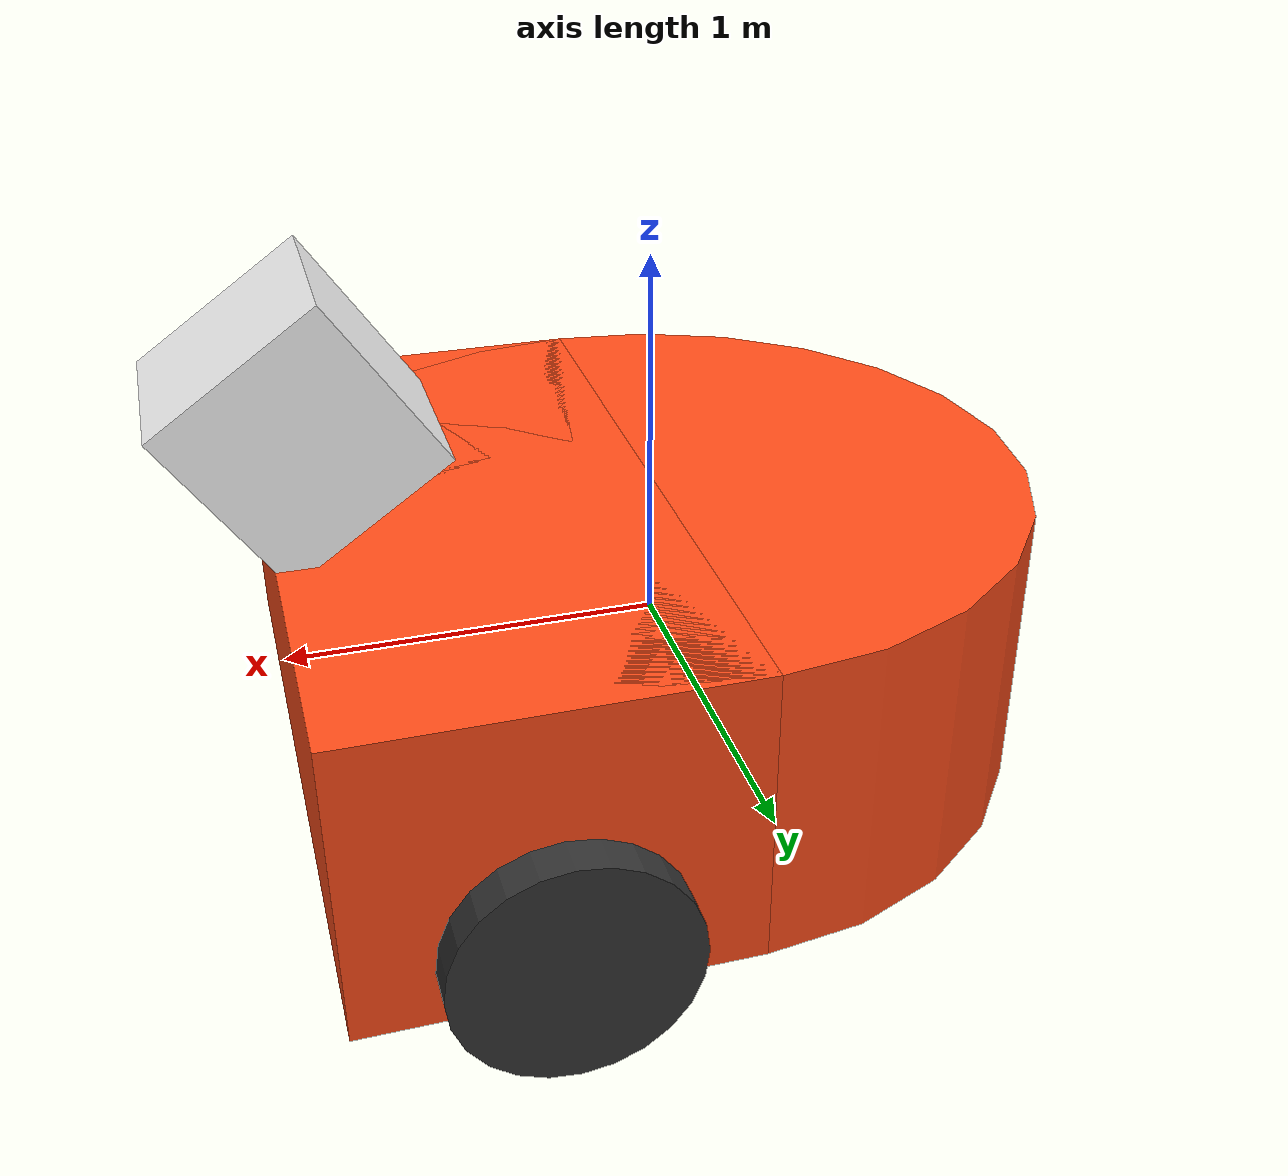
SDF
<?xml version="1.0" ?>
<!-- |    This document was autogenerated by xacro from nemo/models/robot/model.xacro  | -->
<!-- |    EDITING THIS FILE BY HAND IS NOT RECOMMENDED                                 | -->
<sdf version="1.7">
  <model name="robot">
    <static>false</static>
    <!-- Differential Drive Plugin -->
    <plugin filename="libignition-gazebo-diff-drive-system.so" name="ignition::gazebo::systems::DiffDrive">
      <!-- Wheels -->
      <left_joint>left_wheel_joint</left_joint>
      <right_joint>right_wheel_joint</right_joint>
      <!-- Kinematics -->
      <wheel_separation>2.0</wheel_separation>
      <wheel_radius>0.3</wheel_radius>
      <!-- Output -->
      <odom_publish_frequency>2</odom_publish_frequency>
      <tf_topic>tf</tf_topic>
      <frame_id>odom</frame_id>
      <child_frame_id>base_link</child_frame_id>
    </plugin>
    <!--Joint state publisher plugin -->
    <plugin filename="libignition-gazebo-joint-state-publisher-system.so" name="ignition::gazebo::systems::JointStatePublisher"/>
    <!-- IMU Plugin -->
    <plugin filename="libignition-gazebo-imu-system.so" name="ignition::gazebo::systems::Imu"/>
    <!-- Sensors Plugin -->
    <plugin filename="libignition-gazebo-sensors-system.so" name="ignition::gazebo::systems::Sensors">
      <render_engine>ogre2</render_engine>
    </plugin>
    <!-- Chassis -->
    <link name="base_link">
      <inertial>
        <mass>1.14395</mass>
        <inertia>
          <ixx>0.126164</ixx>
          <ixy>0</ixy>
          <ixz>0</ixz>
          <iyy>0.416519</iyy>
          <iyz>0</iyz>
          <izz>0.481014</izz>
        </inertia>
      </inertial>
      <visual name="front">
        <pose>0.5 0 0 0 0 0</pose>
        <geometry>
          <box>
            <size>1.0 2.0 0.8</size>
          </box>
        </geometry>
        <!-- Orange -->
        <material>
          <ambient>1 0.3 0.1 1</ambient>
          <diffuse>1 0.3 0.1 1</diffuse>
          <specular>1.0 1.0 1.0 1</specular>
        </material>
      </visual>
      <visual name="back">
        <geometry>
          <cylinder>
            <radius>1.0</radius>
            <length>0.8</length>
          </cylinder>
        </geometry>
        <!-- Orange -->
        <material>
          <ambient>1 0.3 0.1 1</ambient>
          <diffuse>1 0.3 0.1 1</diffuse>
          <specular>1.0 1.0 1.0 1</specular>
        </material>
      </visual>
      <collision name="collision">
        <geometry>
          <box>
            <size>0.8 2.0 0.8</size>
          </box>
        </geometry>
      </collision>
    </link>
    <!-- Footprint -->
    <link name="base_footprint"/>
    <joint name="base_joint" type="fixed">
      <parent>base_link</parent>
      <child>base_footprint</child>
    </joint>
    <link name="left_wheel">
      <pose>0.5 1.1 -0.2 1.5707963267948966 0 0</pose>
      <inertial>
        <mass>2</mass>
        <inertia>
          <ixx>0.145833</ixx>
          <ixy>0</ixy>
          <ixz>0</ixz>
          <iyy>0.145833</iyy>
          <iyz>0</iyz>
          <izz>0.125</izz>
        </inertia>
      </inertial>
      <visual name="visual">
        <geometry>
          <cylinder>
            <radius>0.3</radius>
            <length>0.1</length>
          </cylinder>
        </geometry>
        <material>
          <ambient>0.2 0.2 0.2 1</ambient>
          <diffuse>0.2 0.2 0.2 1</diffuse>
          <specular>0.2 0.2 0.2 1</specular>
        </material>
      </visual>
      <collision name="collision">
        <geometry>
          <cylinder>
            <radius>0.3</radius>
            <length>0.1</length>
          </cylinder>
        </geometry>
      </collision>
    </link>
    <joint name="left_wheel_joint" type="revolute">
      <pose relative_to="left_wheel"/>
      <parent>base_link</parent>
      <child>left_wheel</child>
      <axis>
        <xyz expressed_in="__model__">0 1 0</xyz>
        <limit>
          <lower>-1.79769e+308</lower>
          <upper>1.79769e+308</upper>
        </limit>
      </axis>
    </joint>
    <link name="right_wheel">
      <pose>0.5 -1.1 -0.2 1.5707963267948966 0 0</pose>
      <inertial>
        <mass>2</mass>
        <inertia>
          <ixx>0.145833</ixx>
          <ixy>0</ixy>
          <ixz>0</ixz>
          <iyy>0.145833</iyy>
          <iyz>0</iyz>
          <izz>0.125</izz>
        </inertia>
      </inertial>
      <visual name="visual">
        <geometry>
          <cylinder>
            <radius>0.3</radius>
            <length>0.1</length>
          </cylinder>
        </geometry>
        <material>
          <ambient>0.2 0.2 0.2 1</ambient>
          <diffuse>0.2 0.2 0.2 1</diffuse>
          <specular>0.2 0.2 0.2 1</specular>
        </material>
      </visual>
      <collision name="collision">
        <geometry>
          <cylinder>
            <radius>0.3</radius>
            <length>0.1</length>
          </cylinder>
        </geometry>
      </collision>
    </link>
    <joint name="right_wheel_joint" type="revolute">
      <pose relative_to="right_wheel"/>
      <parent>base_link</parent>
      <child>right_wheel</child>
      <axis>
        <xyz expressed_in="__model__">0 1 0</xyz>
        <limit>
          <lower>-1.79769e+308</lower>
          <upper>1.79769e+308</upper>
        </limit>
      </axis>
    </joint>
    <!-- Caster wheel -->
    <link name="caster_wheel">
      <pose>-0.8 0 -0.4 0 0 0</pose>
      <inertial>
        <mass>2</mass>
        <inertia>
          <ixx>0.145833</ixx>
          <ixy>0</ixy>
          <ixz>0</ixz>
          <iyy>0.145833</iyy>
          <iyz>0</iyz>
          <izz>0.125</izz>
        </inertia>
      </inertial>
      <visual name="visual">
        <geometry>
          <sphere>
            <radius>0.1</radius>
          </sphere>
        </geometry>
        <material>
          <ambient>0.2 0.2 0.2 1</ambient>
          <diffuse>0.2 0.2 0.2 1</diffuse>
          <specular>0.2 0.2 0.2 1</specular>
        </material>
      </visual>
      <collision name="collision">
        <geometry>
          <sphere>
            <radius>0.1</radius>
          </sphere>
        </geometry>
      </collision>
    </link>
    <joint name="caster_wheel_joint" type="fixed">
      <parent>base_link</parent>
      <child>caster_wheel</child>
      <axis>
        <xyz>0.24 0 0</xyz>
        <limit>
          <lower>-1.79769e+308</lower>
          <upper>1.79769e+308</upper>
        </limit>
      </axis>
    </joint>
    <!-- LiDAR -->
    <link name="lidar_link">
      <pose>1.0 0 0.5 0 0 0</pose>
      <sensor name="scan" type="gpu_lidar">
        <ray>
          <scan>
            <horizontal>
              <samples>640</samples>
              <resolution>1</resolution>
              <min_angle>-1.396263</min_angle>
              <max_angle>1.396263</max_angle>
            </horizontal>
            <vertical>
              <samples>1</samples>
              <resolution>0.01</resolution>
              <min_angle>0</min_angle>
              <max_angle>0</max_angle>
            </vertical>
          </scan>
          <range>
            <min>0.08</min>
            <max>10.0</max>
            <resolution>0.01</resolution>
          </range>
        </ray>
        <always_on>1</always_on>
        <update_rate>30</update_rate>
        <visualize>true</visualize>
        <topic>lidar</topic>
      </sensor>
    </link>
    <joint name="lidar_joint" type="fixed">
      <parent>base_link</parent>
      <child>lidar_link</child>
      <axis>
        <xyz>0 0.5 0</xyz>
        <limit>
          <lower>-1.79769e+308</lower>
          <upper>1.79769e+308</upper>
        </limit>
      </axis>
    </joint>
    <!-- RGB Camera -->
    <link name="camera_link">
      <pose>0.9 0 0.7 0 0.6 0</pose>
      <visual name="visual">
        <geometry>
          <box>
            <size>0.5 0.5 0.5</size>
          </box>
        </geometry>
        <material>
          <ambient>1.0 1.0 1.0 1</ambient>
          <diffuse>1.0 1.0 1.0 1</diffuse>
          <specular>0.0 0.0 1.0 1</specular>
        </material>
      </visual>
      <sensor name="camera" type="camera">
        <camera>
          <horizontal_fov>1.047</horizontal_fov>
          <image>
            <width>800</width>
            <height>800</height>
          </image>
          <clip>
            <near>0.1</near>
            <far>100</far>
          </clip>
        </camera>
        <always_on>1</always_on>
        <update_rate>30</update_rate>
        <visualize>true</visualize>
        <topic>camera</topic>
        <save enabled="false">
          <path>camera/</path>
        </save>
      </sensor>
    </link>
    <joint name="camera_joint" type="fixed">
      <parent>base_link</parent>
      <child>camera_link</child>
      <axis>
        <xyz>0 0.5 0</xyz>
        <limit>
          <lower>-1.79769e+308</lower>
          <upper>1.79769e+308</upper>
        </limit>
      </axis>
    </joint>
  </model>
</sdf>
